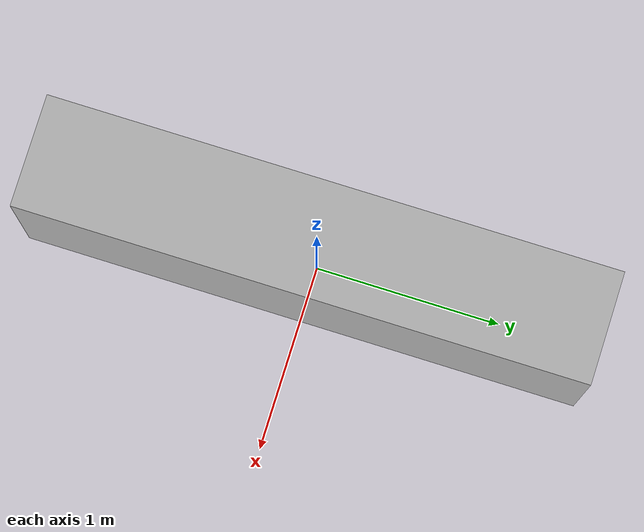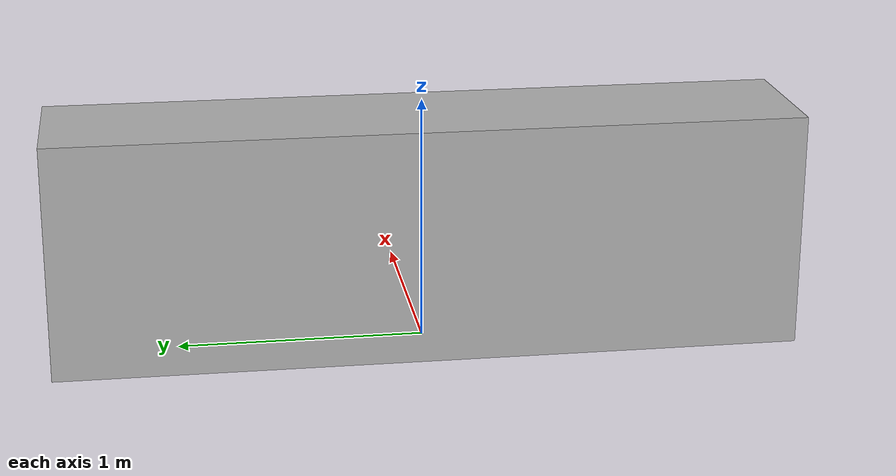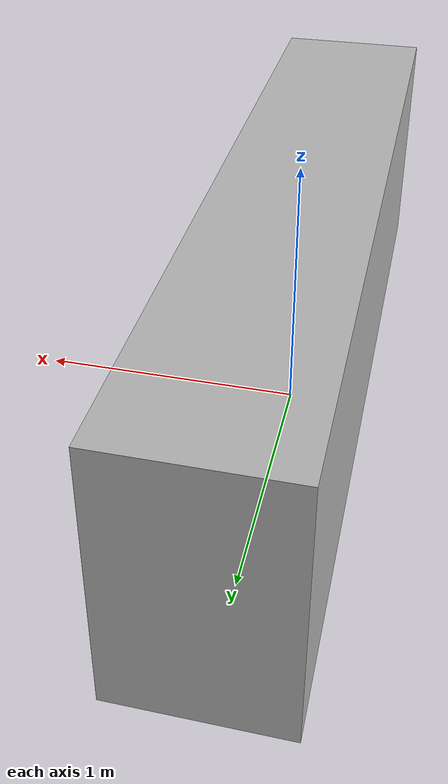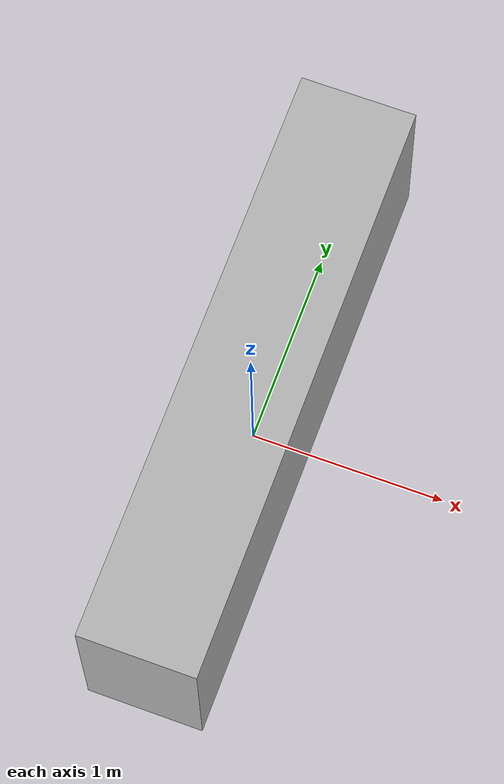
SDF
<?xml version="1.0"?>
<sdf version="1.6">
  <model name="reo2016/kitchencounter">
    <link name="1_link">
      <collision name="1_col">
        <geometry>
          <box>
            <size>0.59 3.0 0.95</size>
          </box>
        </geometry>
      </collision>
      <visual name="1_vis">
        <geometry>
          <box>
            <size>0.59 3.0 0.95</size>
          </box>
        </geometry>
      </visual>
      <pose>0.0 0.0 0.475 0 0 0</pose>
    </link>
    <link name="on_top_of">
      <virtual_volume name="on_top_of_vv">
        <geometry>
          <box>
            <size>0.58 3.0 0.31</size>
          </box>
        </geometry>
        <pose>0.0 0.0 1.145 0 0 0</pose>
      </virtual_volume>
    </link>
    <link name="left_of_sink">
      <virtual_volume name="left_of_sink_vv">
        <geometry>
          <box>
            <size>0.58 0.75 0.32</size>
          </box>
        </geometry>
        <pose>0.0 0.875 1.15 0 0 0</pose>
      </virtual_volume>
    </link>
    <link name="right_of_sink">
      <virtual_volume name="right_of_sink_vv">
        <geometry>
          <box>
            <size>0.58 0.75 0.32</size>
          </box>
        </geometry>
        <pose>0.0 -0.875 1.15 0 0 0</pose>
      </virtual_volume>
    </link>
    <link name="in_front_of_left_sink">
      <virtual_volume name="in_front_of_left_sink_vv">
        <geometry>
          <box>
            <size>0.6 0.75 0.01</size>
          </box>
        </geometry>
        <pose>-1.1 0.875 0.005 0 0 0</pose>
      </virtual_volume>
    </link>
    <link name="in_front_of_right_sink">
      <virtual_volume name="in_front_of_right_sink_vv">
        <geometry>
          <box>
            <size>0.6 0.75 0.01</size>
          </box>
        </geometry>
        <pose>-1.1 -0.875 0.005 0 0 0</pose>
      </virtual_volume>
    </link>
    <link name="in_front_of">
      <virtual_volume name="in_front_of_vv">
        <geometry>
          <box>
            <size>0.6 3.0 0.01</size>
          </box>
        </geometry>
        <pose>-1.1 0.0 0.005 0 0 0</pose>
      </virtual_volume>
    </link>
    <static>true</static>
  </model>
</sdf>
